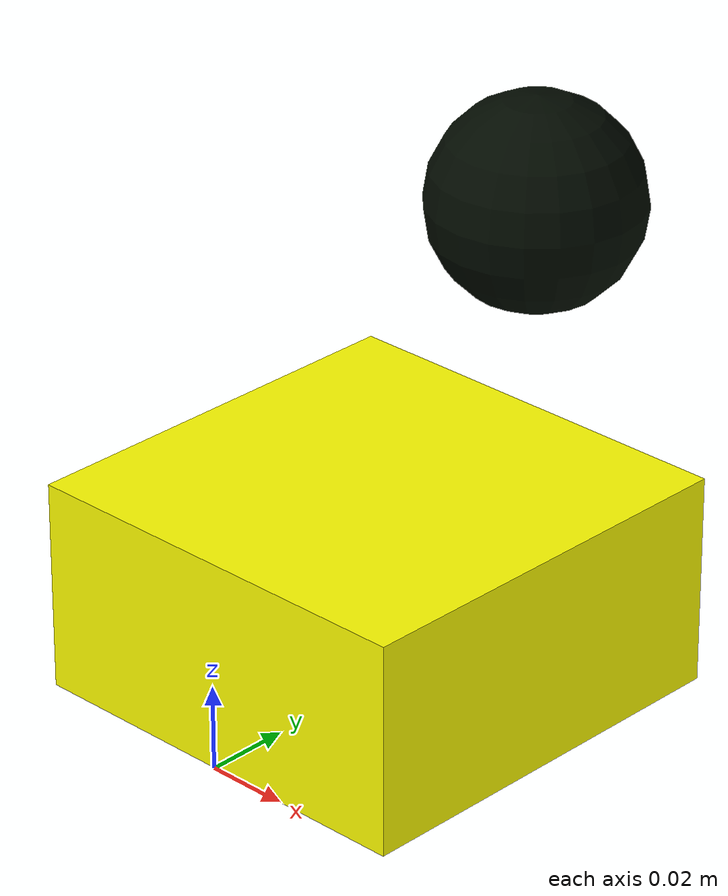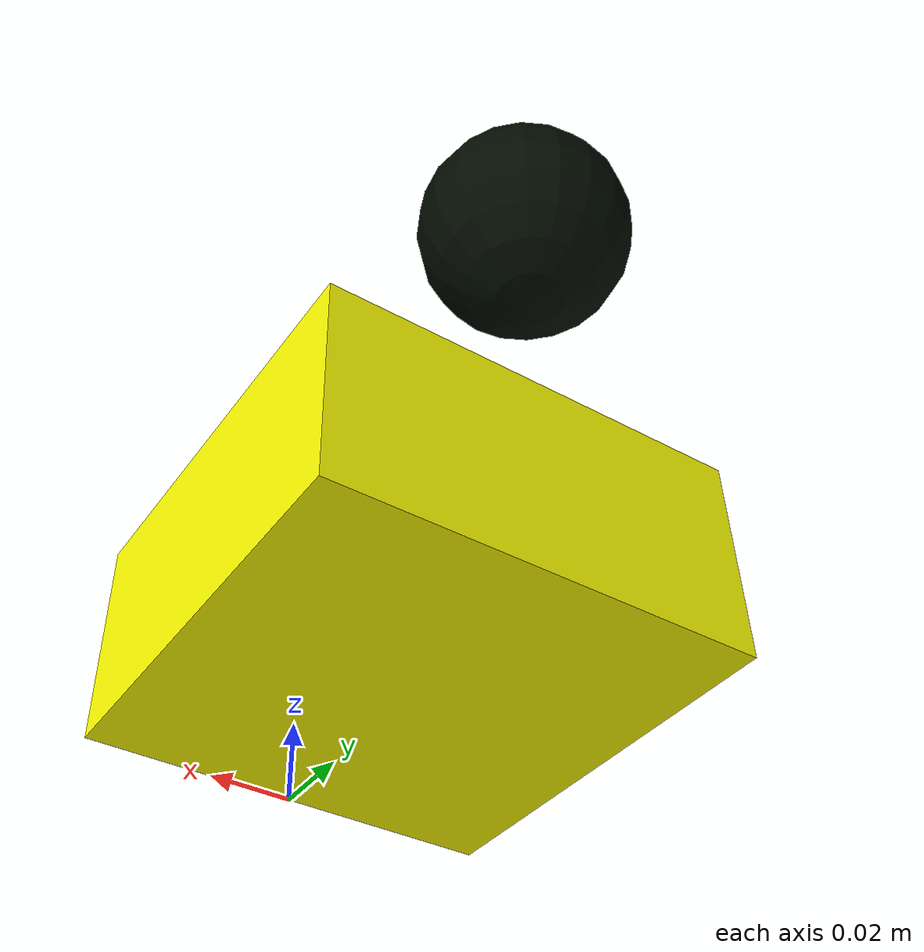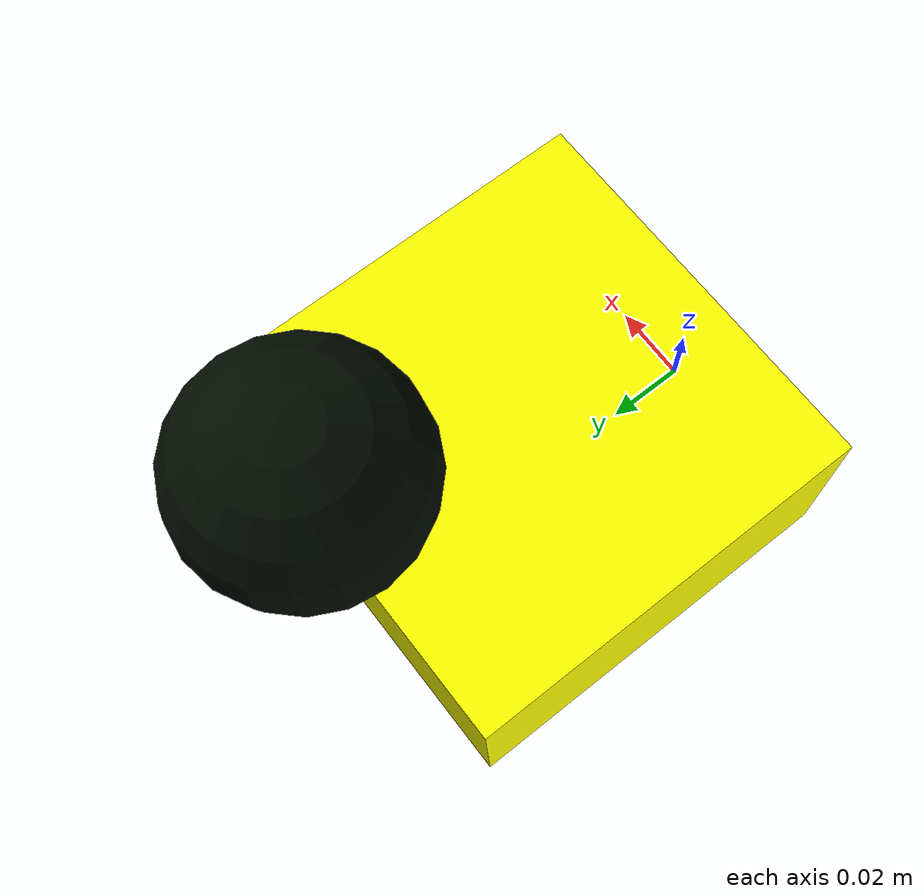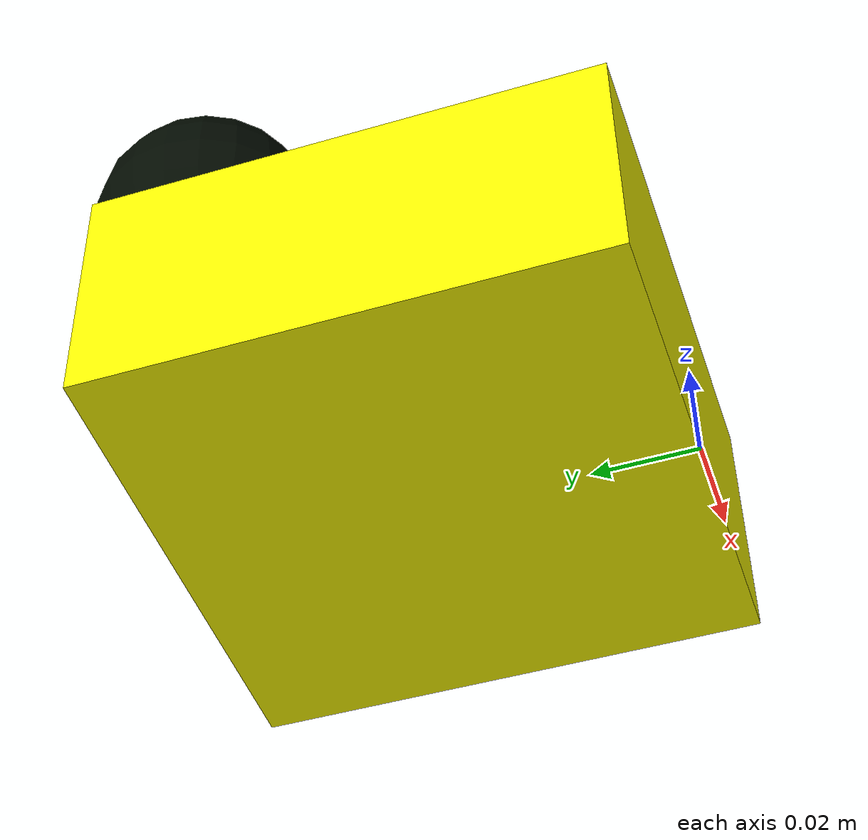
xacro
<?xml version="1.0"?>
<robot xmlns:xacro="http://www.ros.org/wiki/xacro" name="robot_name">

<link name="base_link">
    <inertial>
        <origin xyz="0.0 0.0 0.0" rpy="0.0 0.0 0.0"/>
        <mass value="15"/>
        <inertia ixx="0.0" ixy="0.0" ixz="0.0" iyy="0.0" iyz="0.0" izz="0.0"/>
    </inertial>
    <visual name="">
        <origin xyz="0.00 0.05 0.025" rpy="0.0 0.0 0.0"/>
        <geometry>
            <box size=".10 .10 .05"/>
        </geometry>
        <material name="">
            <color rgba="1.0 1.0 0.0 1.0"/>
            <texture filename=""/>
        </material>
    </visual>
    <collision>
        <origin xyz="0.00 0.05 0.025" rpy="0.0 0.0 0.0"/>
        <geometry>
            <box size=".10 .10 .10"/>
        </geometry>
    </collision>
</link>
<link name="semisphere_link">
    <inertial>
        <origin xyz="0.0 0.0 0.0" rpy="0.0 0.0 0.0"/>
        <mass value="5"/>
        <inertia ixx="0.0" ixy="0.0" ixz="0.0" iyy="0.0" iyz="0.0" izz="0.0"/>
    </inertial>
    <visual name="">
        <origin xyz=".0 0.05 0.05" rpy="0.0 0.0 0.0"/>
        <geometry>
              <sphere radius="0.025"/>
       </geometry>
        <material name="">
            <color rgba="1.1 10 0.0 1.0"/>
            <texture filename=""/>
        </material>
    </visual>
    <collision>
        <origin xyz="0.00 0.05 0.05" rpy="0.0 0.0 0.0"/>
        <geometry>
              <sphere radius="0.025"/>
        </geometry>
    </collision>
</link>
<joint name="semisphere_joint" type="fixed">
    <origin xyz="0.0 0.05 0.05" rpy="0.0 0.0 0.0"/>
    <parent link="base_link"/>
    <child link="semisphere_link"/>
    <axis xyz="0.0 0.0 0.0"/>
    <limit lower="0.0" upper="0.0" effort="0.0" velocity="0.0"/>
</joint>

</robot>
